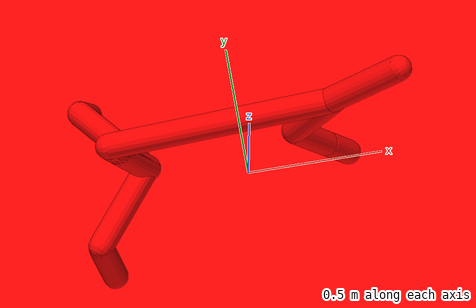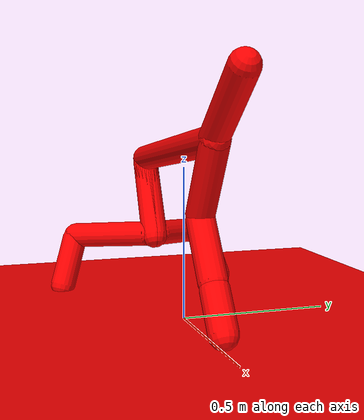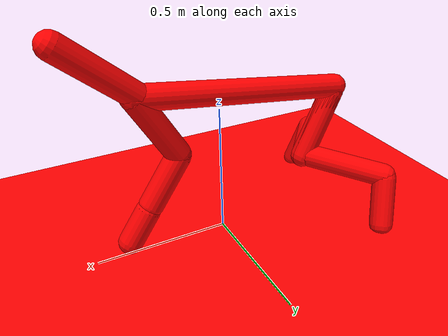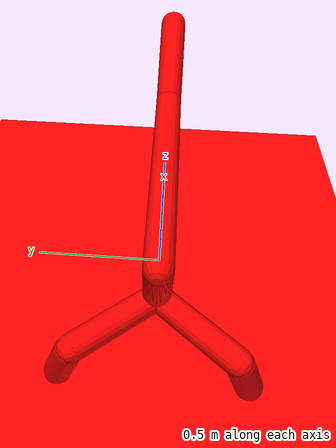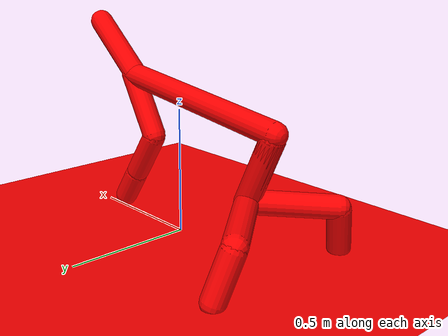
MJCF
<mujoco model="alien_cheetah">
  <compiler angle="radian" />
  <default>
    <joint armature="1" damping="1" limited="true"/>
    <geom condim="6" density="5.0" friction="1 0.5 0.5" margin="0.01" rgba="1 0 0 1"/>
    <motor ctrllimited="true" ctrlrange="-1 1"/>
  </default>
  <option timestep="0.01"/>
  <size njmax="3000" nconmax="1000"/>

  <worldbody>
     <geom name="floor" size="5 5 0.1" type="plane" condim="6"/>
    <body name="robot" pos="0 0 .6">
      <site name="robot" rgba="1 0 0 .1"/>
      <camera name="vision" pos=".125 0 .2" xyaxes="0 -1 0 .4 0 1" fovy="100"/>
      <joint armature="0" axis="1 0 0" damping="0" limited="false" name="rootx" pos="0 0 0" stiffness="0" type="slide"/>
      <joint armature="0" axis="0 0 1" damping="0" limited="false" name="rootz" pos="0 0 0" stiffness="0" type="hinge"/>
      <joint armature="0" axis="0 1 0" damping="0" limited="false" name="rooty" pos="0 0 0" stiffness="0" type="slide"/>
      <geom fromto="-.5 0 -0.1 .3 0 0" name="robot" size="0.046" type="capsule"/>
      <geom axisangle="0 1 0 .87" name="head" pos=".4 0 .1" size="0.046 .15" type="capsule"/>
      <body name="blthigh" pos="-.5 0 -0.1" euler="0.5 0 -0.8">
        <joint axis="0 1 0" damping="6" name="blthigh" pos="0 0 0" range="-.52 1.05" stiffness="240" type="hinge"/>
        <geom axisangle="0 1 0 -3.8" name="blthigh" pos=".1 0 -.13" size="0.046 .145" type="capsule"/>
        <body name="blshin" pos=".16 0 -.25">
          <joint axis="0 1 0" damping="4.5" name="blshin" pos="0 0 0" range="-.785 .785" stiffness="180" type="hinge"/>
          <geom axisangle="0 1 0 -2.03" name="blshin" pos="-.14 0 -.07" rgba="1 0  0 1" size="0.046 .15" type="capsule"/>
          <body name="blfoot" pos="-.28 0 -.14">
            <joint axis="0 1 0" damping="3" name="blfoot" pos="0 0 0" range="-.4 .785" stiffness="120" type="hinge"/>
            <geom axisangle="0 1 0 -.27" name="blfoot" pos=".03 0 -.097" rgba="1 0  0 1" size="0.046 .094" type="capsule"/>
          </body>
        </body>
      </body>

      <body name="brthigh" pos="-.5 0 -0.1" euler="-0.5 0 0.8">
        <joint axis="0 1 0" damping="6" name="brthigh" pos="0 0 0" range="-.52 1.05" stiffness="240" type="hinge"/>
        <geom axisangle="0 1 0 -3.8" name="brthigh" pos=".1 0 -.13" size="0.046 .145" type="capsule"/>
        <body name="brshin" pos=".16 0 -.25">
          <joint axis="0 1 0" damping="4.5" name="brshin" pos="0 0 0" range="-.785 .785" stiffness="180" type="hinge"/>
          <geom axisangle="0 1 0 -2.03" name="brshin" pos="-.14 0 -.07" rgba="1 0  0 1" size="0.046 .15" type="capsule"/>
          <body name="brfoot" pos="-.28 0 -.14">
            <joint axis="0 1 0" damping="3" name="brfoot" pos="0 0 0" range="-.4 .785" stiffness="120" type="hinge"/>
            <geom axisangle="0 1 0 -.27" name="brfoot" pos=".03 0 -.097" rgba="1 0  0 1" size="0.046 .094" type="capsule"/>
          </body>
        </body>
      </body>

      <body name="fthigh" pos=".3 0 0">
        <joint axis="0 1 0" damping="4.5" name="fthigh" pos="0 0 0" range="-1 .7" stiffness="180" type="hinge"/>
        <geom axisangle="0 1 0 .52" name="fthigh" pos="-.07 0 -.12" size="0.046 .133" type="capsule"/>
        <body name="fshin" pos="-.14 0 -.24">
          <joint axis="0 1 0" damping="3" name="fshin" pos="0 0 0" range="-1.2 .87" stiffness="120" type="hinge"/>
          <geom axisangle="0 1 0 -.6" name="fshin" pos=".065 0 -.09" rgba="1 0 0 1" size="0.046 .106" type="capsule"/>
          <body name="ffoot" pos=".13 0 -.18">
            <joint axis="0 1 0" damping="1.5" name="ffoot" pos="0 0 0" range="-.5 .5" stiffness="60" type="hinge"/>
            <geom axisangle="0 1 0 -.6" name="ffoot" pos=".045 0 -.07" rgba="1 0 0 1" size="0.046 .07" type="capsule"/>
          </body>
        </body>
      </body>
    </body>
  </worldbody>
  <sensor>
        <jointpos joint="blthigh" name="jointpos_blthigh"/>
        <jointpos joint="blshin" name="jointpos_blshin"/>
        <jointpos joint="blfoot" name="jointpos_blfoot"/>
        <jointpos joint="fthigh" name="jointpos_fthigh"/>
        <jointpos joint="fshin" name="jointpos_fshin"/>
        <jointpos joint="ffoot" name="jointpos_ffoot"/>

        <jointvel joint="blthigh" name="jointvel_blthigh"/>
        <jointvel joint="blshin" name="jointvel_blshin"/>
        <jointvel joint="blfoot" name="jointvel_blfoot"/>
        <jointvel joint="fthigh" name="jointvel_fthigh"/>
        <jointvel joint="fshin" name="jointvel_fshin"/>
        <jointvel joint="ffoot" name="jointvel_ffoot"/>

        <!-- Used for observation -->
        <accelerometer site="robot" name="accelerometer"/>
        <velocimeter site="robot" name="velocimeter"/>
        <gyro site="robot" name="gyro"/>
        <magnetometer site="robot" name="magnetometer"/>

        <!-- Used for intrinsic constraints -->
        <subtreecom body="robot" name="subtreecom"/>
        <subtreelinvel body="robot" name="subtreelinvel"/>
        <subtreeangmom body="robot" name="subtreeangmom"/>
  </sensor>
  <actuator>
    <motor gear="60" joint="blthigh" name="blthigh"/>
    <motor gear="20" joint="blshin" name="blshin"/>
    <motor gear="10" joint="blfoot" name="blfoot"/>
    <motor gear="60" joint="brthigh" name="brthigh"/>
    <motor gear="20" joint="brshin" name="brshin"/>
    <motor gear="10" joint="brfoot" name="brfoot"/>
    <motor gear="60" joint="fthigh" name="fthigh"/>
    <motor gear="50" joint="fshin" name="fshin"/>
    <motor gear="50" joint="ffoot" name="ffoot"/>
  </actuator>
</mujoco>
